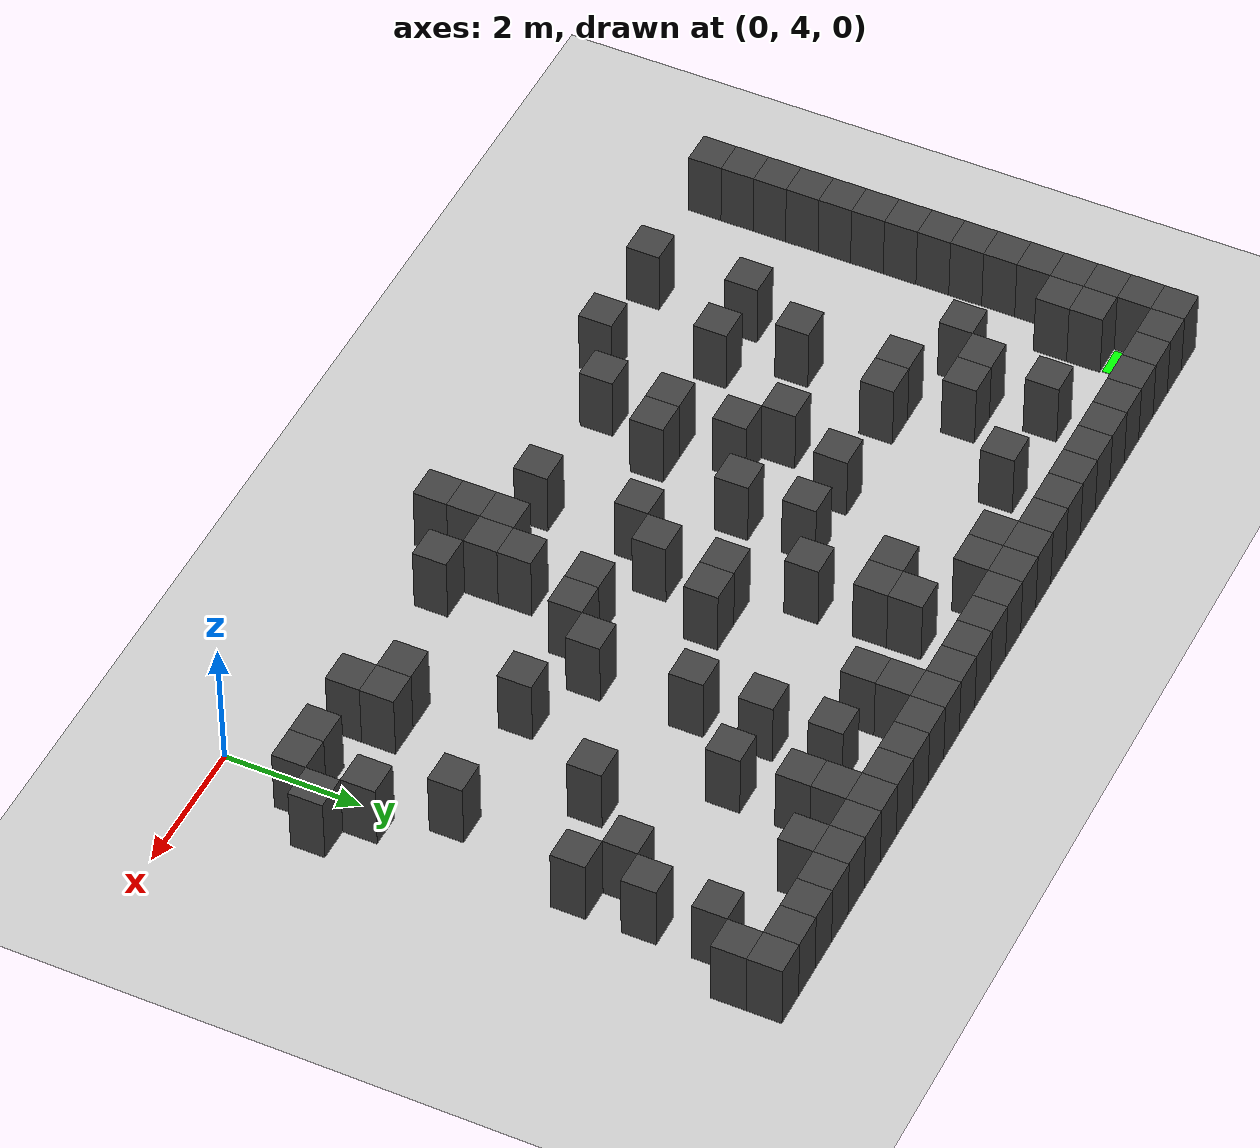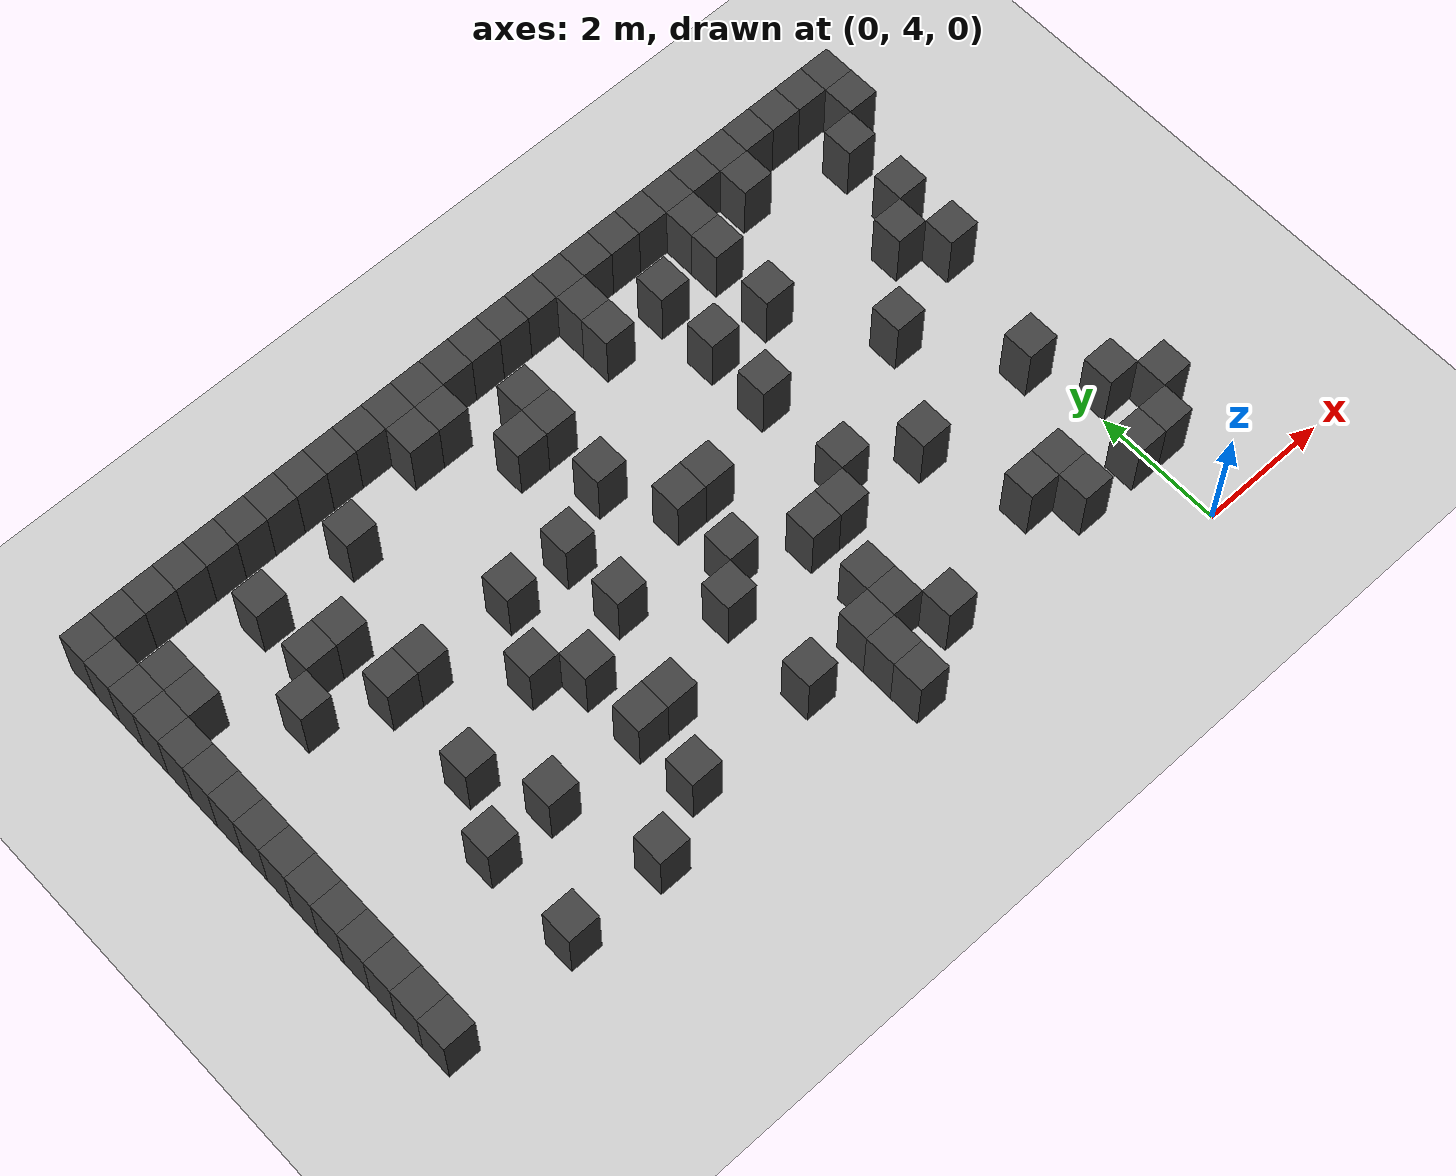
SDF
<sdf version="1.7">
 <world name="map_4009">
  <model name="ground_plane">
   <static>true</static>
   <link name="link">
    <collision name="collision">
     <geometry><plane><normal>0 0 1</normal><size>200 200</size></plane></geometry>
    </collision>
    <visual name="visual">
     <geometry><plane><normal>0 0 1</normal><size>200 200</size></plane></geometry>
     <material><ambient>0.8 0.8 0.8 1</ambient><diffuse>0.8 0.8 0.8 1</diffuse></material>
    </visual>
   </link>
  </model>
  <model name="maze_environment">
   <static>true</static>
   <link name="wall_0">
    <pose>-12.250 12.250 0.500 0 0 0</pose>
    <collision name="col"><geometry><box><size>0.5 0.5 1.0</size></box></geometry></collision>
    <visual name="vis">
     <geometry><box><size>0.5 0.5 1.0</size></box></geometry>
     <material><ambient>0.15 0.15 0.15 1</ambient><diffuse>0.25 0.25 0.25 1</diffuse></material>
    </visual>
   </link>
   <link name="wall_1">
    <pose>-11.750 12.250 0.500 0 0 0</pose>
    <collision name="col"><geometry><box><size>0.5 0.5 1.0</size></box></geometry></collision>
    <visual name="vis">
     <geometry><box><size>0.5 0.5 1.0</size></box></geometry>
     <material><ambient>0.15 0.15 0.15 1</ambient><diffuse>0.25 0.25 0.25 1</diffuse></material>
    </visual>
   </link>
   <link name="wall_2">
    <pose>-11.250 12.250 0.500 0 0 0</pose>
    <collision name="col"><geometry><box><size>0.5 0.5 1.0</size></box></geometry></collision>
    <visual name="vis">
     <geometry><box><size>0.5 0.5 1.0</size></box></geometry>
     <material><ambient>0.15 0.15 0.15 1</ambient><diffuse>0.25 0.25 0.25 1</diffuse></material>
    </visual>
   </link>
   <link name="wall_3">
    <pose>-10.750 12.250 0.500 0 0 0</pose>
    <collision name="col"><geometry><box><size>0.5 0.5 1.0</size></box></geometry></collision>
    <visual name="vis">
     <geometry><box><size>0.5 0.5 1.0</size></box></geometry>
     <material><ambient>0.15 0.15 0.15 1</ambient><diffuse>0.25 0.25 0.25 1</diffuse></material>
    </visual>
   </link>
   <link name="wall_4">
    <pose>-10.250 12.250 0.500 0 0 0</pose>
    <collision name="col"><geometry><box><size>0.5 0.5 1.0</size></box></geometry></collision>
    <visual name="vis">
     <geometry><box><size>0.5 0.5 1.0</size></box></geometry>
     <material><ambient>0.15 0.15 0.15 1</ambient><diffuse>0.25 0.25 0.25 1</diffuse></material>
    </visual>
   </link>
   <link name="wall_5">
    <pose>-9.750 12.250 0.500 0 0 0</pose>
    <collision name="col"><geometry><box><size>0.5 0.5 1.0</size></box></geometry></collision>
    <visual name="vis">
     <geometry><box><size>0.5 0.5 1.0</size></box></geometry>
     <material><ambient>0.15 0.15 0.15 1</ambient><diffuse>0.25 0.25 0.25 1</diffuse></material>
    </visual>
   </link>
   <link name="wall_6">
    <pose>-9.250 12.250 0.500 0 0 0</pose>
    <collision name="col"><geometry><box><size>0.5 0.5 1.0</size></box></geometry></collision>
    <visual name="vis">
     <geometry><box><size>0.5 0.5 1.0</size></box></geometry>
     <material><ambient>0.15 0.15 0.15 1</ambient><diffuse>0.25 0.25 0.25 1</diffuse></material>
    </visual>
   </link>
   <link name="wall_7">
    <pose>-8.750 12.250 0.500 0 0 0</pose>
    <collision name="col"><geometry><box><size>0.5 0.5 1.0</size></box></geometry></collision>
    <visual name="vis">
     <geometry><box><size>0.5 0.5 1.0</size></box></geometry>
     <material><ambient>0.15 0.15 0.15 1</ambient><diffuse>0.25 0.25 0.25 1</diffuse></material>
    </visual>
   </link>
   <link name="wall_8">
    <pose>-8.250 12.250 0.500 0 0 0</pose>
    <collision name="col"><geometry><box><size>0.5 0.5 1.0</size></box></geometry></collision>
    <visual name="vis">
     <geometry><box><size>0.5 0.5 1.0</size></box></geometry>
     <material><ambient>0.15 0.15 0.15 1</ambient><diffuse>0.25 0.25 0.25 1</diffuse></material>
    </visual>
   </link>
   <link name="wall_9">
    <pose>-7.750 12.250 0.500 0 0 0</pose>
    <collision name="col"><geometry><box><size>0.5 0.5 1.0</size></box></geometry></collision>
    <visual name="vis">
     <geometry><box><size>0.5 0.5 1.0</size></box></geometry>
     <material><ambient>0.15 0.15 0.15 1</ambient><diffuse>0.25 0.25 0.25 1</diffuse></material>
    </visual>
   </link>
   <link name="wall_10">
    <pose>-7.250 12.250 0.500 0 0 0</pose>
    <collision name="col"><geometry><box><size>0.5 0.5 1.0</size></box></geometry></collision>
    <visual name="vis">
     <geometry><box><size>0.5 0.5 1.0</size></box></geometry>
     <material><ambient>0.15 0.15 0.15 1</ambient><diffuse>0.25 0.25 0.25 1</diffuse></material>
    </visual>
   </link>
   <link name="wall_11">
    <pose>-6.750 12.250 0.500 0 0 0</pose>
    <collision name="col"><geometry><box><size>0.5 0.5 1.0</size></box></geometry></collision>
    <visual name="vis">
     <geometry><box><size>0.5 0.5 1.0</size></box></geometry>
     <material><ambient>0.15 0.15 0.15 1</ambient><diffuse>0.25 0.25 0.25 1</diffuse></material>
    </visual>
   </link>
   <link name="wall_12">
    <pose>-6.250 12.250 0.500 0 0 0</pose>
    <collision name="col"><geometry><box><size>0.5 0.5 1.0</size></box></geometry></collision>
    <visual name="vis">
     <geometry><box><size>0.5 0.5 1.0</size></box></geometry>
     <material><ambient>0.15 0.15 0.15 1</ambient><diffuse>0.25 0.25 0.25 1</diffuse></material>
    </visual>
   </link>
   <link name="wall_13">
    <pose>-5.750 12.250 0.500 0 0 0</pose>
    <collision name="col"><geometry><box><size>0.5 0.5 1.0</size></box></geometry></collision>
    <visual name="vis">
     <geometry><box><size>0.5 0.5 1.0</size></box></geometry>
     <material><ambient>0.15 0.15 0.15 1</ambient><diffuse>0.25 0.25 0.25 1</diffuse></material>
    </visual>
   </link>
   <link name="wall_14">
    <pose>-5.250 12.250 0.500 0 0 0</pose>
    <collision name="col"><geometry><box><size>0.5 0.5 1.0</size></box></geometry></collision>
    <visual name="vis">
     <geometry><box><size>0.5 0.5 1.0</size></box></geometry>
     <material><ambient>0.15 0.15 0.15 1</ambient><diffuse>0.25 0.25 0.25 1</diffuse></material>
    </visual>
   </link>
   <link name="wall_15">
    <pose>-4.750 12.250 0.500 0 0 0</pose>
    <collision name="col"><geometry><box><size>0.5 0.5 1.0</size></box></geometry></collision>
    <visual name="vis">
     <geometry><box><size>0.5 0.5 1.0</size></box></geometry>
     <material><ambient>0.15 0.15 0.15 1</ambient><diffuse>0.25 0.25 0.25 1</diffuse></material>
    </visual>
   </link>
   <link name="wall_16">
    <pose>-4.250 12.250 0.500 0 0 0</pose>
    <collision name="col"><geometry><box><size>0.5 0.5 1.0</size></box></geometry></collision>
    <visual name="vis">
     <geometry><box><size>0.5 0.5 1.0</size></box></geometry>
     <material><ambient>0.15 0.15 0.15 1</ambient><diffuse>0.25 0.25 0.25 1</diffuse></material>
    </visual>
   </link>
   <link name="wall_17">
    <pose>-3.750 12.250 0.500 0 0 0</pose>
    <collision name="col"><geometry><box><size>0.5 0.5 1.0</size></box></geometry></collision>
    <visual name="vis">
     <geometry><box><size>0.5 0.5 1.0</size></box></geometry>
     <material><ambient>0.15 0.15 0.15 1</ambient><diffuse>0.25 0.25 0.25 1</diffuse></material>
    </visual>
   </link>
   <link name="wall_18">
    <pose>-3.250 12.250 0.500 0 0 0</pose>
    <collision name="col"><geometry><box><size>0.5 0.5 1.0</size></box></geometry></collision>
    <visual name="vis">
     <geometry><box><size>0.5 0.5 1.0</size></box></geometry>
     <material><ambient>0.15 0.15 0.15 1</ambient><diffuse>0.25 0.25 0.25 1</diffuse></material>
    </visual>
   </link>
   <link name="wall_19">
    <pose>-2.750 12.250 0.500 0 0 0</pose>
    <collision name="col"><geometry><box><size>0.5 0.5 1.0</size></box></geometry></collision>
    <visual name="vis">
     <geometry><box><size>0.5 0.5 1.0</size></box></geometry>
     <material><ambient>0.15 0.15 0.15 1</ambient><diffuse>0.25 0.25 0.25 1</diffuse></material>
    </visual>
   </link>
   <link name="wall_20">
    <pose>-2.250 12.250 0.500 0 0 0</pose>
    <collision name="col"><geometry><box><size>0.5 0.5 1.0</size></box></geometry></collision>
    <visual name="vis">
     <geometry><box><size>0.5 0.5 1.0</size></box></geometry>
     <material><ambient>0.15 0.15 0.15 1</ambient><diffuse>0.25 0.25 0.25 1</diffuse></material>
    </visual>
   </link>
   <link name="wall_21">
    <pose>-1.750 12.250 0.500 0 0 0</pose>
    <collision name="col"><geometry><box><size>0.5 0.5 1.0</size></box></geometry></collision>
    <visual name="vis">
     <geometry><box><size>0.5 0.5 1.0</size></box></geometry>
     <material><ambient>0.15 0.15 0.15 1</ambient><diffuse>0.25 0.25 0.25 1</diffuse></material>
    </visual>
   </link>
   <link name="wall_22">
    <pose>-1.250 12.250 0.500 0 0 0</pose>
    <collision name="col"><geometry><box><size>0.5 0.5 1.0</size></box></geometry></collision>
    <visual name="vis">
     <geometry><box><size>0.5 0.5 1.0</size></box></geometry>
     <material><ambient>0.15 0.15 0.15 1</ambient><diffuse>0.25 0.25 0.25 1</diffuse></material>
    </visual>
   </link>
   <link name="wall_23">
    <pose>-0.750 12.250 0.500 0 0 0</pose>
    <collision name="col"><geometry><box><size>0.5 0.5 1.0</size></box></geometry></collision>
    <visual name="vis">
     <geometry><box><size>0.5 0.5 1.0</size></box></geometry>
     <material><ambient>0.15 0.15 0.15 1</ambient><diffuse>0.25 0.25 0.25 1</diffuse></material>
    </visual>
   </link>
   <link name="wall_24">
    <pose>-0.250 12.250 0.500 0 0 0</pose>
    <collision name="col"><geometry><box><size>0.5 0.5 1.0</size></box></geometry></collision>
    <visual name="vis">
     <geometry><box><size>0.5 0.5 1.0</size></box></geometry>
     <material><ambient>0.15 0.15 0.15 1</ambient><diffuse>0.25 0.25 0.25 1</diffuse></material>
    </visual>
   </link>
   <link name="wall_25">
    <pose>0.250 12.250 0.500 0 0 0</pose>
    <collision name="col"><geometry><box><size>0.5 0.5 1.0</size></box></geometry></collision>
    <visual name="vis">
     <geometry><box><size>0.5 0.5 1.0</size></box></geometry>
     <material><ambient>0.15 0.15 0.15 1</ambient><diffuse>0.25 0.25 0.25 1</diffuse></material>
    </visual>
   </link>
   <link name="wall_26">
    <pose>0.750 12.250 0.500 0 0 0</pose>
    <collision name="col"><geometry><box><size>0.5 0.5 1.0</size></box></geometry></collision>
    <visual name="vis">
     <geometry><box><size>0.5 0.5 1.0</size></box></geometry>
     <material><ambient>0.15 0.15 0.15 1</ambient><diffuse>0.25 0.25 0.25 1</diffuse></material>
    </visual>
   </link>
   <link name="wall_50">
    <pose>-12.250 11.750 0.500 0 0 0</pose>
    <collision name="col"><geometry><box><size>0.5 0.5 1.0</size></box></geometry></collision>
    <visual name="vis">
     <geometry><box><size>0.5 0.5 1.0</size></box></geometry>
     <material><ambient>0.15 0.15 0.15 1</ambient><diffuse>0.25 0.25 0.25 1</diffuse></material>
    </visual>
   </link>
   <link name="wall_51">
    <pose>-7.250 11.750 0.500 0 0 0</pose>
    <collision name="col"><geometry><box><size>0.5 0.5 1.0</size></box></geometry></collision>
    <visual name="vis">
     <geometry><box><size>0.5 0.5 1.0</size></box></geometry>
     <material><ambient>0.15 0.15 0.15 1</ambient><diffuse>0.25 0.25 0.25 1</diffuse></material>
    </visual>
   </link>
   <link name="wall_52">
    <pose>-6.750 11.750 0.500 0 0 0</pose>
    <collision name="col"><geometry><box><size>0.5 0.5 1.0</size></box></geometry></collision>
    <visual name="vis">
     <geometry><box><size>0.5 0.5 1.0</size></box></geometry>
     <material><ambient>0.15 0.15 0.15 1</ambient><diffuse>0.25 0.25 0.25 1</diffuse></material>
    </visual>
   </link>
   <link name="wall_53">
    <pose>-4.250 11.750 0.500 0 0 0</pose>
    <collision name="col"><geometry><box><size>0.5 0.5 1.0</size></box></geometry></collision>
    <visual name="vis">
     <geometry><box><size>0.5 0.5 1.0</size></box></geometry>
     <material><ambient>0.15 0.15 0.15 1</ambient><diffuse>0.25 0.25 0.25 1</diffuse></material>
    </visual>
   </link>
   <link name="wall_54">
    <pose>-2.250 11.750 0.500 0 0 0</pose>
    <collision name="col"><geometry><box><size>0.5 0.5 1.0</size></box></geometry></collision>
    <visual name="vis">
     <geometry><box><size>0.5 0.5 1.0</size></box></geometry>
     <material><ambient>0.15 0.15 0.15 1</ambient><diffuse>0.25 0.25 0.25 1</diffuse></material>
    </visual>
   </link>
   <link name="wall_55">
    <pose>-1.250 11.750 0.500 0 0 0</pose>
    <collision name="col"><geometry><box><size>0.5 0.5 1.0</size></box></geometry></collision>
    <visual name="vis">
     <geometry><box><size>0.5 0.5 1.0</size></box></geometry>
     <material><ambient>0.15 0.15 0.15 1</ambient><diffuse>0.25 0.25 0.25 1</diffuse></material>
    </visual>
   </link>
   <link name="wall_56">
    <pose>0.750 11.750 0.500 0 0 0</pose>
    <collision name="col"><geometry><box><size>0.5 0.5 1.0</size></box></geometry></collision>
    <visual name="vis">
     <geometry><box><size>0.5 0.5 1.0</size></box></geometry>
     <material><ambient>0.15 0.15 0.15 1</ambient><diffuse>0.25 0.25 0.25 1</diffuse></material>
    </visual>
   </link>
   <link name="wall_64">
    <pose>-12.250 11.250 0.500 0 0 0</pose>
    <collision name="col"><geometry><box><size>0.5 0.5 1.0</size></box></geometry></collision>
    <visual name="vis">
     <geometry><box><size>0.5 0.5 1.0</size></box></geometry>
     <material><ambient>0.15 0.15 0.15 1</ambient><diffuse>0.25 0.25 0.25 1</diffuse></material>
    </visual>
   </link>
   <link name="wall_65">
    <pose>-11.750 11.250 0.500 0 0 0</pose>
    <collision name="col"><geometry><box><size>0.5 0.5 1.0</size></box></geometry></collision>
    <visual name="vis">
     <geometry><box><size>0.5 0.5 1.0</size></box></geometry>
     <material><ambient>0.15 0.15 0.15 1</ambient><diffuse>0.25 0.25 0.25 1</diffuse></material>
    </visual>
   </link>
   <link name="wall_66">
    <pose>-10.250 11.250 0.500 0 0 0</pose>
    <collision name="col"><geometry><box><size>0.5 0.5 1.0</size></box></geometry></collision>
    <visual name="vis">
     <geometry><box><size>0.5 0.5 1.0</size></box></geometry>
     <material><ambient>0.15 0.15 0.15 1</ambient><diffuse>0.25 0.25 0.25 1</diffuse></material>
    </visual>
   </link>
   <link name="wall_67">
    <pose>-8.750 11.250 0.500 0 0 0</pose>
    <collision name="col"><geometry><box><size>0.5 0.5 1.0</size></box></geometry></collision>
    <visual name="vis">
     <geometry><box><size>0.5 0.5 1.0</size></box></geometry>
     <material><ambient>0.15 0.15 0.15 1</ambient><diffuse>0.25 0.25 0.25 1</diffuse></material>
    </visual>
   </link>
   <link name="wall_68">
    <pose>-5.750 11.250 0.500 0 0 0</pose>
    <collision name="col"><geometry><box><size>0.5 0.5 1.0</size></box></geometry></collision>
    <visual name="vis">
     <geometry><box><size>0.5 0.5 1.0</size></box></geometry>
     <material><ambient>0.15 0.15 0.15 1</ambient><diffuse>0.25 0.25 0.25 1</diffuse></material>
    </visual>
   </link>
   <link name="wall_69">
    <pose>-4.250 11.250 0.500 0 0 0</pose>
    <collision name="col"><geometry><box><size>0.5 0.5 1.0</size></box></geometry></collision>
    <visual name="vis">
     <geometry><box><size>0.5 0.5 1.0</size></box></geometry>
     <material><ambient>0.15 0.15 0.15 1</ambient><diffuse>0.25 0.25 0.25 1</diffuse></material>
    </visual>
   </link>
   <link name="wall_70">
    <pose>-3.250 11.250 0.500 0 0 0</pose>
    <collision name="col"><geometry><box><size>0.5 0.5 1.0</size></box></geometry></collision>
    <visual name="vis">
     <geometry><box><size>0.5 0.5 1.0</size></box></geometry>
     <material><ambient>0.15 0.15 0.15 1</ambient><diffuse>0.25 0.25 0.25 1</diffuse></material>
    </visual>
   </link>
   <link name="wall_71">
    <pose>-2.250 11.250 0.500 0 0 0</pose>
    <collision name="col"><geometry><box><size>0.5 0.5 1.0</size></box></geometry></collision>
    <visual name="vis">
     <geometry><box><size>0.5 0.5 1.0</size></box></geometry>
     <material><ambient>0.15 0.15 0.15 1</ambient><diffuse>0.25 0.25 0.25 1</diffuse></material>
    </visual>
   </link>
   <link name="wall_72">
    <pose>0.250 11.250 0.500 0 0 0</pose>
    <collision name="col"><geometry><box><size>0.5 0.5 1.0</size></box></geometry></collision>
    <visual name="vis">
     <geometry><box><size>0.5 0.5 1.0</size></box></geometry>
     <material><ambient>0.15 0.15 0.15 1</ambient><diffuse>0.25 0.25 0.25 1</diffuse></material>
    </visual>
   </link>
   <link name="wall_79">
    <pose>-12.250 10.750 0.500 0 0 0</pose>
    <collision name="col"><geometry><box><size>0.5 0.5 1.0</size></box></geometry></collision>
    <visual name="vis">
     <geometry><box><size>0.5 0.5 1.0</size></box></geometry>
     <material><ambient>0.15 0.15 0.15 1</ambient><diffuse>0.25 0.25 0.25 1</diffuse></material>
    </visual>
   </link>
   <link name="wall_80">
    <pose>-11.750 10.750 0.500 0 0 0</pose>
    <collision name="col"><geometry><box><size>0.5 0.5 1.0</size></box></geometry></collision>
    <visual name="vis">
     <geometry><box><size>0.5 0.5 1.0</size></box></geometry>
     <material><ambient>0.15 0.15 0.15 1</ambient><diffuse>0.25 0.25 0.25 1</diffuse></material>
    </visual>
   </link>
   <link name="wall_81">
    <pose>-6.250 10.750 0.500 0 0 0</pose>
    <collision name="col"><geometry><box><size>0.5 0.5 1.0</size></box></geometry></collision>
    <visual name="vis">
     <geometry><box><size>0.5 0.5 1.0</size></box></geometry>
     <material><ambient>0.15 0.15 0.15 1</ambient><diffuse>0.25 0.25 0.25 1</diffuse></material>
    </visual>
   </link>
   <link name="wall_82">
    <pose>-5.750 10.750 0.500 0 0 0</pose>
    <collision name="col"><geometry><box><size>0.5 0.5 1.0</size></box></geometry></collision>
    <visual name="vis">
     <geometry><box><size>0.5 0.5 1.0</size></box></geometry>
     <material><ambient>0.15 0.15 0.15 1</ambient><diffuse>0.25 0.25 0.25 1</diffuse></material>
    </visual>
   </link>
   <link name="wall_87">
    <pose>-12.250 10.250 0.500 0 0 0</pose>
    <collision name="col"><geometry><box><size>0.5 0.5 1.0</size></box></geometry></collision>
    <visual name="vis">
     <geometry><box><size>0.5 0.5 1.0</size></box></geometry>
     <material><ambient>0.15 0.15 0.15 1</ambient><diffuse>0.25 0.25 0.25 1</diffuse></material>
    </visual>
   </link>
   <link name="wall_88">
    <pose>-10.250 10.250 0.500 0 0 0</pose>
    <collision name="col"><geometry><box><size>0.5 0.5 1.0</size></box></geometry></collision>
    <visual name="vis">
     <geometry><box><size>0.5 0.5 1.0</size></box></geometry>
     <material><ambient>0.15 0.15 0.15 1</ambient><diffuse>0.25 0.25 0.25 1</diffuse></material>
    </visual>
   </link>
   <link name="wall_89">
    <pose>-9.750 10.250 0.500 0 0 0</pose>
    <collision name="col"><geometry><box><size>0.5 0.5 1.0</size></box></geometry></collision>
    <visual name="vis">
     <geometry><box><size>0.5 0.5 1.0</size></box></geometry>
     <material><ambient>0.15 0.15 0.15 1</ambient><diffuse>0.25 0.25 0.25 1</diffuse></material>
    </visual>
   </link>
   <link name="wall_90">
    <pose>-3.250 10.250 0.500 0 0 0</pose>
    <collision name="col"><geometry><box><size>0.5 0.5 1.0</size></box></geometry></collision>
    <visual name="vis">
     <geometry><box><size>0.5 0.5 1.0</size></box></geometry>
     <material><ambient>0.15 0.15 0.15 1</ambient><diffuse>0.25 0.25 0.25 1</diffuse></material>
    </visual>
   </link>
   <link name="wall_91">
    <pose>-2.250 10.250 0.500 0 0 0</pose>
    <collision name="col"><geometry><box><size>0.5 0.5 1.0</size></box></geometry></collision>
    <visual name="vis">
     <geometry><box><size>0.5 0.5 1.0</size></box></geometry>
     <material><ambient>0.15 0.15 0.15 1</ambient><diffuse>0.25 0.25 0.25 1</diffuse></material>
    </visual>
   </link>
   <link name="wall_92">
    <pose>0.250 10.250 0.500 0 0 0</pose>
    <collision name="col"><geometry><box><size>0.5 0.5 1.0</size></box></geometry></collision>
    <visual name="vis">
     <geometry><box><size>0.5 0.5 1.0</size></box></geometry>
     <material><ambient>0.15 0.15 0.15 1</ambient><diffuse>0.25 0.25 0.25 1</diffuse></material>
    </visual>
   </link>
   <link name="wall_98">
    <pose>-12.250 9.750 0.500 0 0 0</pose>
    <collision name="col"><geometry><box><size>0.5 0.5 1.0</size></box></geometry></collision>
    <visual name="vis">
     <geometry><box><size>0.5 0.5 1.0</size></box></geometry>
     <material><ambient>0.15 0.15 0.15 1</ambient><diffuse>0.25 0.25 0.25 1</diffuse></material>
    </visual>
   </link>
   <link name="wall_99">
    <pose>-10.750 9.750 0.500 0 0 0</pose>
    <collision name="col"><geometry><box><size>0.5 0.5 1.0</size></box></geometry></collision>
    <visual name="vis">
     <geometry><box><size>0.5 0.5 1.0</size></box></geometry>
     <material><ambient>0.15 0.15 0.15 1</ambient><diffuse>0.25 0.25 0.25 1</diffuse></material>
    </visual>
   </link>
   <link name="wall_100">
    <pose>-5.750 9.750 0.500 0 0 0</pose>
    <collision name="col"><geometry><box><size>0.5 0.5 1.0</size></box></geometry></collision>
    <visual name="vis">
     <geometry><box><size>0.5 0.5 1.0</size></box></geometry>
     <material><ambient>0.15 0.15 0.15 1</ambient><diffuse>0.25 0.25 0.25 1</diffuse></material>
    </visual>
   </link>
   <link name="wall_101">
    <pose>-0.250 9.750 0.500 0 0 0</pose>
    <collision name="col"><geometry><box><size>0.5 0.5 1.0</size></box></geometry></collision>
    <visual name="vis">
     <geometry><box><size>0.5 0.5 1.0</size></box></geometry>
     <material><ambient>0.15 0.15 0.15 1</ambient><diffuse>0.25 0.25 0.25 1</diffuse></material>
    </visual>
   </link>
   <link name="wall_107">
    <pose>-12.250 9.250 0.500 0 0 0</pose>
    <collision name="col"><geometry><box><size>0.5 0.5 1.0</size></box></geometry></collision>
    <visual name="vis">
     <geometry><box><size>0.5 0.5 1.0</size></box></geometry>
     <material><ambient>0.15 0.15 0.15 1</ambient><diffuse>0.25 0.25 0.25 1</diffuse></material>
    </visual>
   </link>
   <link name="wall_108">
    <pose>-9.750 9.250 0.500 0 0 0</pose>
    <collision name="col"><geometry><box><size>0.5 0.5 1.0</size></box></geometry></collision>
    <visual name="vis">
     <geometry><box><size>0.5 0.5 1.0</size></box></geometry>
     <material><ambient>0.15 0.15 0.15 1</ambient><diffuse>0.25 0.25 0.25 1</diffuse></material>
    </visual>
   </link>
   <link name="wall_109">
    <pose>-9.250 9.250 0.500 0 0 0</pose>
    <collision name="col"><geometry><box><size>0.5 0.5 1.0</size></box></geometry></collision>
    <visual name="vis">
     <geometry><box><size>0.5 0.5 1.0</size></box></geometry>
     <material><ambient>0.15 0.15 0.15 1</ambient><diffuse>0.25 0.25 0.25 1</diffuse></material>
    </visual>
   </link>
   <link name="wall_110">
    <pose>-7.750 9.250 0.500 0 0 0</pose>
    <collision name="col"><geometry><box><size>0.5 0.5 1.0</size></box></geometry></collision>
    <visual name="vis">
     <geometry><box><size>0.5 0.5 1.0</size></box></geometry>
     <material><ambient>0.15 0.15 0.15 1</ambient><diffuse>0.25 0.25 0.25 1</diffuse></material>
    </visual>
   </link>
   <link name="wall_111">
    <pose>-6.750 9.250 0.500 0 0 0</pose>
    <collision name="col"><geometry><box><size>0.5 0.5 1.0</size></box></geometry></collision>
    <visual name="vis">
     <geometry><box><size>0.5 0.5 1.0</size></box></geometry>
     <material><ambient>0.15 0.15 0.15 1</ambient><diffuse>0.25 0.25 0.25 1</diffuse></material>
    </visual>
   </link>
   <link name="wall_112">
    <pose>-3.250 9.250 0.500 0 0 0</pose>
    <collision name="col"><geometry><box><size>0.5 0.5 1.0</size></box></geometry></collision>
    <visual name="vis">
     <geometry><box><size>0.5 0.5 1.0</size></box></geometry>
     <material><ambient>0.15 0.15 0.15 1</ambient><diffuse>0.25 0.25 0.25 1</diffuse></material>
    </visual>
   </link>
   <link name="wall_113">
    <pose>0.250 9.250 0.500 0 0 0</pose>
    <collision name="col"><geometry><box><size>0.5 0.5 1.0</size></box></geometry></collision>
    <visual name="vis">
     <geometry><box><size>0.5 0.5 1.0</size></box></geometry>
     <material><ambient>0.15 0.15 0.15 1</ambient><diffuse>0.25 0.25 0.25 1</diffuse></material>
    </visual>
   </link>
   <link name="wall_117">
    <pose>-12.250 8.750 0.500 0 0 0</pose>
    <collision name="col"><geometry><box><size>0.5 0.5 1.0</size></box></geometry></collision>
    <visual name="vis">
     <geometry><box><size>0.5 0.5 1.0</size></box></geometry>
     <material><ambient>0.15 0.15 0.15 1</ambient><diffuse>0.25 0.25 0.25 1</diffuse></material>
    </visual>
   </link>
   <link name="wall_118">
    <pose>-5.250 8.750 0.500 0 0 0</pose>
    <collision name="col"><geometry><box><size>0.5 0.5 1.0</size></box></geometry></collision>
    <visual name="vis">
     <geometry><box><size>0.5 0.5 1.0</size></box></geometry>
     <material><ambient>0.15 0.15 0.15 1</ambient><diffuse>0.25 0.25 0.25 1</diffuse></material>
    </visual>
   </link>
   <link name="wall_119">
    <pose>-4.750 8.750 0.500 0 0 0</pose>
    <collision name="col"><geometry><box><size>0.5 0.5 1.0</size></box></geometry></collision>
    <visual name="vis">
     <geometry><box><size>0.5 0.5 1.0</size></box></geometry>
     <material><ambient>0.15 0.15 0.15 1</ambient><diffuse>0.25 0.25 0.25 1</diffuse></material>
    </visual>
   </link>
   <link name="wall_120">
    <pose>-1.250 8.750 0.500 0 0 0</pose>
    <collision name="col"><geometry><box><size>0.5 0.5 1.0</size></box></geometry></collision>
    <visual name="vis">
     <geometry><box><size>0.5 0.5 1.0</size></box></geometry>
     <material><ambient>0.15 0.15 0.15 1</ambient><diffuse>0.25 0.25 0.25 1</diffuse></material>
    </visual>
   </link>
   <link name="wall_126">
    <pose>-12.250 8.250 0.500 0 0 0</pose>
    <collision name="col"><geometry><box><size>0.5 0.5 1.0</size></box></geometry></collision>
    <visual name="vis">
     <geometry><box><size>0.5 0.5 1.0</size></box></geometry>
     <material><ambient>0.15 0.15 0.15 1</ambient><diffuse>0.25 0.25 0.25 1</diffuse></material>
    </visual>
   </link>
   <link name="wall_127">
    <pose>-8.250 8.250 0.500 0 0 0</pose>
    <collision name="col"><geometry><box><size>0.5 0.5 1.0</size></box></geometry></collision>
    <visual name="vis">
     <geometry><box><size>0.5 0.5 1.0</size></box></geometry>
     <material><ambient>0.15 0.15 0.15 1</ambient><diffuse>0.25 0.25 0.25 1</diffuse></material>
    </visual>
   </link>
   <link name="wall_128">
    <pose>-6.750 8.250 0.500 0 0 0</pose>
    <collision name="col"><geometry><box><size>0.5 0.5 1.0</size></box></geometry></collision>
    <visual name="vis">
     <geometry><box><size>0.5 0.5 1.0</size></box></geometry>
     <material><ambient>0.15 0.15 0.15 1</ambient><diffuse>0.25 0.25 0.25 1</diffuse></material>
    </visual>
   </link>
   <link name="wall_133">
    <pose>-12.250 7.750 0.500 0 0 0</pose>
    <collision name="col"><geometry><box><size>0.5 0.5 1.0</size></box></geometry></collision>
    <visual name="vis">
     <geometry><box><size>0.5 0.5 1.0</size></box></geometry>
     <material><ambient>0.15 0.15 0.15 1</ambient><diffuse>0.25 0.25 0.25 1</diffuse></material>
    </visual>
   </link>
   <link name="wall_134">
    <pose>-9.750 7.750 0.500 0 0 0</pose>
    <collision name="col"><geometry><box><size>0.5 0.5 1.0</size></box></geometry></collision>
    <visual name="vis">
     <geometry><box><size>0.5 0.5 1.0</size></box></geometry>
     <material><ambient>0.15 0.15 0.15 1</ambient><diffuse>0.25 0.25 0.25 1</diffuse></material>
    </visual>
   </link>
   <link name="wall_135">
    <pose>-7.750 7.750 0.500 0 0 0</pose>
    <collision name="col"><geometry><box><size>0.5 0.5 1.0</size></box></geometry></collision>
    <visual name="vis">
     <geometry><box><size>0.5 0.5 1.0</size></box></geometry>
     <material><ambient>0.15 0.15 0.15 1</ambient><diffuse>0.25 0.25 0.25 1</diffuse></material>
    </visual>
   </link>
   <link name="wall_136">
    <pose>-5.250 7.750 0.500 0 0 0</pose>
    <collision name="col"><geometry><box><size>0.5 0.5 1.0</size></box></geometry></collision>
    <visual name="vis">
     <geometry><box><size>0.5 0.5 1.0</size></box></geometry>
     <material><ambient>0.15 0.15 0.15 1</ambient><diffuse>0.25 0.25 0.25 1</diffuse></material>
    </visual>
   </link>
   <link name="wall_137">
    <pose>-3.250 7.750 0.500 0 0 0</pose>
    <collision name="col"><geometry><box><size>0.5 0.5 1.0</size></box></geometry></collision>
    <visual name="vis">
     <geometry><box><size>0.5 0.5 1.0</size></box></geometry>
     <material><ambient>0.15 0.15 0.15 1</ambient><diffuse>0.25 0.25 0.25 1</diffuse></material>
    </visual>
   </link>
   <link name="wall_144">
    <pose>-12.250 7.250 0.500 0 0 0</pose>
    <collision name="col"><geometry><box><size>0.5 0.5 1.0</size></box></geometry></collision>
    <visual name="vis">
     <geometry><box><size>0.5 0.5 1.0</size></box></geometry>
     <material><ambient>0.15 0.15 0.15 1</ambient><diffuse>0.25 0.25 0.25 1</diffuse></material>
    </visual>
   </link>
   <link name="wall_145">
    <pose>-5.750 7.250 0.500 0 0 0</pose>
    <collision name="col"><geometry><box><size>0.5 0.5 1.0</size></box></geometry></collision>
    <visual name="vis">
     <geometry><box><size>0.5 0.5 1.0</size></box></geometry>
     <material><ambient>0.15 0.15 0.15 1</ambient><diffuse>0.25 0.25 0.25 1</diffuse></material>
    </visual>
   </link>
   <link name="wall_146">
    <pose>-4.250 7.250 0.500 0 0 0</pose>
    <collision name="col"><geometry><box><size>0.5 0.5 1.0</size></box></geometry></collision>
    <visual name="vis">
     <geometry><box><size>0.5 0.5 1.0</size></box></geometry>
     <material><ambient>0.15 0.15 0.15 1</ambient><diffuse>0.25 0.25 0.25 1</diffuse></material>
    </visual>
   </link>
   <link name="wall_147">
    <pose>-3.750 7.250 0.500 0 0 0</pose>
    <collision name="col"><geometry><box><size>0.5 0.5 1.0</size></box></geometry></collision>
    <visual name="vis">
     <geometry><box><size>0.5 0.5 1.0</size></box></geometry>
     <material><ambient>0.15 0.15 0.15 1</ambient><diffuse>0.25 0.25 0.25 1</diffuse></material>
    </visual>
   </link>
   <link name="wall_148">
    <pose>-2.250 7.250 0.500 0 0 0</pose>
    <collision name="col"><geometry><box><size>0.5 0.5 1.0</size></box></geometry></collision>
    <visual name="vis">
     <geometry><box><size>0.5 0.5 1.0</size></box></geometry>
     <material><ambient>0.15 0.15 0.15 1</ambient><diffuse>0.25 0.25 0.25 1</diffuse></material>
    </visual>
   </link>
   <link name="wall_149">
    <pose>-0.250 7.250 0.500 0 0 0</pose>
    <collision name="col"><geometry><box><size>0.5 0.5 1.0</size></box></geometry></collision>
    <visual name="vis">
     <geometry><box><size>0.5 0.5 1.0</size></box></geometry>
     <material><ambient>0.15 0.15 0.15 1</ambient><diffuse>0.25 0.25 0.25 1</diffuse></material>
    </visual>
   </link>
   <link name="wall_155">
    <pose>-12.250 6.750 0.500 0 0 0</pose>
    <collision name="col"><geometry><box><size>0.5 0.5 1.0</size></box></geometry></collision>
    <visual name="vis">
     <geometry><box><size>0.5 0.5 1.0</size></box></geometry>
     <material><ambient>0.15 0.15 0.15 1</ambient><diffuse>0.25 0.25 0.25 1</diffuse></material>
    </visual>
   </link>
   <link name="wall_156">
    <pose>-10.250 6.750 0.500 0 0 0</pose>
    <collision name="col"><geometry><box><size>0.5 0.5 1.0</size></box></geometry></collision>
    <visual name="vis">
     <geometry><box><size>0.5 0.5 1.0</size></box></geometry>
     <material><ambient>0.15 0.15 0.15 1</ambient><diffuse>0.25 0.25 0.25 1</diffuse></material>
    </visual>
   </link>
   <link name="wall_157">
    <pose>-9.250 6.750 0.500 0 0 0</pose>
    <collision name="col"><geometry><box><size>0.5 0.5 1.0</size></box></geometry></collision>
    <visual name="vis">
     <geometry><box><size>0.5 0.5 1.0</size></box></geometry>
     <material><ambient>0.15 0.15 0.15 1</ambient><diffuse>0.25 0.25 0.25 1</diffuse></material>
    </visual>
   </link>
   <link name="wall_158">
    <pose>-7.750 6.750 0.500 0 0 0</pose>
    <collision name="col"><geometry><box><size>0.5 0.5 1.0</size></box></geometry></collision>
    <visual name="vis">
     <geometry><box><size>0.5 0.5 1.0</size></box></geometry>
     <material><ambient>0.15 0.15 0.15 1</ambient><diffuse>0.25 0.25 0.25 1</diffuse></material>
    </visual>
   </link>
   <link name="wall_159">
    <pose>-7.250 6.750 0.500 0 0 0</pose>
    <collision name="col"><geometry><box><size>0.5 0.5 1.0</size></box></geometry></collision>
    <visual name="vis">
     <geometry><box><size>0.5 0.5 1.0</size></box></geometry>
     <material><ambient>0.15 0.15 0.15 1</ambient><diffuse>0.25 0.25 0.25 1</diffuse></material>
    </visual>
   </link>
   <link name="wall_166">
    <pose>-12.250 6.250 0.500 0 0 0</pose>
    <collision name="col"><geometry><box><size>0.5 0.5 1.0</size></box></geometry></collision>
    <visual name="vis">
     <geometry><box><size>0.5 0.5 1.0</size></box></geometry>
     <material><ambient>0.15 0.15 0.15 1</ambient><diffuse>0.25 0.25 0.25 1</diffuse></material>
    </visual>
   </link>
   <link name="wall_167">
    <pose>-4.250 6.250 0.500 0 0 0</pose>
    <collision name="col"><geometry><box><size>0.5 0.5 1.0</size></box></geometry></collision>
    <visual name="vis">
     <geometry><box><size>0.5 0.5 1.0</size></box></geometry>
     <material><ambient>0.15 0.15 0.15 1</ambient><diffuse>0.25 0.25 0.25 1</diffuse></material>
    </visual>
   </link>
   <link name="wall_168">
    <pose>0.250 6.250 0.500 0 0 0</pose>
    <collision name="col"><geometry><box><size>0.5 0.5 1.0</size></box></geometry></collision>
    <visual name="vis">
     <geometry><box><size>0.5 0.5 1.0</size></box></geometry>
     <material><ambient>0.15 0.15 0.15 1</ambient><diffuse>0.25 0.25 0.25 1</diffuse></material>
    </visual>
   </link>
   <link name="wall_175">
    <pose>-12.250 5.750 0.500 0 0 0</pose>
    <collision name="col"><geometry><box><size>0.5 0.5 1.0</size></box></geometry></collision>
    <visual name="vis">
     <geometry><box><size>0.5 0.5 1.0</size></box></geometry>
     <material><ambient>0.15 0.15 0.15 1</ambient><diffuse>0.25 0.25 0.25 1</diffuse></material>
    </visual>
   </link>
   <link name="wall_176">
    <pose>-7.750 5.750 0.500 0 0 0</pose>
    <collision name="col"><geometry><box><size>0.5 0.5 1.0</size></box></geometry></collision>
    <visual name="vis">
     <geometry><box><size>0.5 0.5 1.0</size></box></geometry>
     <material><ambient>0.15 0.15 0.15 1</ambient><diffuse>0.25 0.25 0.25 1</diffuse></material>
    </visual>
   </link>
   <link name="wall_177">
    <pose>-5.750 5.750 0.500 0 0 0</pose>
    <collision name="col"><geometry><box><size>0.5 0.5 1.0</size></box></geometry></collision>
    <visual name="vis">
     <geometry><box><size>0.5 0.5 1.0</size></box></geometry>
     <material><ambient>0.15 0.15 0.15 1</ambient><diffuse>0.25 0.25 0.25 1</diffuse></material>
    </visual>
   </link>
   <link name="wall_178">
    <pose>-4.750 5.750 0.500 0 0 0</pose>
    <collision name="col"><geometry><box><size>0.5 0.5 1.0</size></box></geometry></collision>
    <visual name="vis">
     <geometry><box><size>0.5 0.5 1.0</size></box></geometry>
     <material><ambient>0.15 0.15 0.15 1</ambient><diffuse>0.25 0.25 0.25 1</diffuse></material>
    </visual>
   </link>
   <link name="wall_179">
    <pose>-4.250 5.750 0.500 0 0 0</pose>
    <collision name="col"><geometry><box><size>0.5 0.5 1.0</size></box></geometry></collision>
    <visual name="vis">
     <geometry><box><size>0.5 0.5 1.0</size></box></geometry>
     <material><ambient>0.15 0.15 0.15 1</ambient><diffuse>0.25 0.25 0.25 1</diffuse></material>
    </visual>
   </link>
   <link name="wall_180">
    <pose>-1.750 5.750 0.500 0 0 0</pose>
    <collision name="col"><geometry><box><size>0.5 0.5 1.0</size></box></geometry></collision>
    <visual name="vis">
     <geometry><box><size>0.5 0.5 1.0</size></box></geometry>
     <material><ambient>0.15 0.15 0.15 1</ambient><diffuse>0.25 0.25 0.25 1</diffuse></material>
    </visual>
   </link>
   <link name="wall_181">
    <pose>-1.250 5.750 0.500 0 0 0</pose>
    <collision name="col"><geometry><box><size>0.5 0.5 1.0</size></box></geometry></collision>
    <visual name="vis">
     <geometry><box><size>0.5 0.5 1.0</size></box></geometry>
     <material><ambient>0.15 0.15 0.15 1</ambient><diffuse>0.25 0.25 0.25 1</diffuse></material>
    </visual>
   </link>
   <link name="wall_182">
    <pose>0.750 5.750 0.500 0 0 0</pose>
    <collision name="col"><geometry><box><size>0.5 0.5 1.0</size></box></geometry></collision>
    <visual name="vis">
     <geometry><box><size>0.5 0.5 1.0</size></box></geometry>
     <material><ambient>0.15 0.15 0.15 1</ambient><diffuse>0.25 0.25 0.25 1</diffuse></material>
    </visual>
   </link>
   <link name="wall_192">
    <pose>-12.250 5.250 0.500 0 0 0</pose>
    <collision name="col"><geometry><box><size>0.5 0.5 1.0</size></box></geometry></collision>
    <visual name="vis">
     <geometry><box><size>0.5 0.5 1.0</size></box></geometry>
     <material><ambient>0.15 0.15 0.15 1</ambient><diffuse>0.25 0.25 0.25 1</diffuse></material>
    </visual>
   </link>
   <link name="wall_193">
    <pose>-10.250 5.250 0.500 0 0 0</pose>
    <collision name="col"><geometry><box><size>0.5 0.5 1.0</size></box></geometry></collision>
    <visual name="vis">
     <geometry><box><size>0.5 0.5 1.0</size></box></geometry>
     <material><ambient>0.15 0.15 0.15 1</ambient><diffuse>0.25 0.25 0.25 1</diffuse></material>
    </visual>
   </link>
   <link name="wall_194">
    <pose>-8.750 5.250 0.500 0 0 0</pose>
    <collision name="col"><geometry><box><size>0.5 0.5 1.0</size></box></geometry></collision>
    <visual name="vis">
     <geometry><box><size>0.5 0.5 1.0</size></box></geometry>
     <material><ambient>0.15 0.15 0.15 1</ambient><diffuse>0.25 0.25 0.25 1</diffuse></material>
    </visual>
   </link>
   <link name="wall_195">
    <pose>-4.750 5.250 0.500 0 0 0</pose>
    <collision name="col"><geometry><box><size>0.5 0.5 1.0</size></box></geometry></collision>
    <visual name="vis">
     <geometry><box><size>0.5 0.5 1.0</size></box></geometry>
     <material><ambient>0.15 0.15 0.15 1</ambient><diffuse>0.25 0.25 0.25 1</diffuse></material>
    </visual>
   </link>
   <link name="wall_196">
    <pose>-3.750 5.250 0.500 0 0 0</pose>
    <collision name="col"><geometry><box><size>0.5 0.5 1.0</size></box></geometry></collision>
    <visual name="vis">
     <geometry><box><size>0.5 0.5 1.0</size></box></geometry>
     <material><ambient>0.15 0.15 0.15 1</ambient><diffuse>0.25 0.25 0.25 1</diffuse></material>
    </visual>
   </link>
   <link name="wall_197">
    <pose>-1.250 5.250 0.500 0 0 0</pose>
    <collision name="col"><geometry><box><size>0.5 0.5 1.0</size></box></geometry></collision>
    <visual name="vis">
     <geometry><box><size>0.5 0.5 1.0</size></box></geometry>
     <material><ambient>0.15 0.15 0.15 1</ambient><diffuse>0.25 0.25 0.25 1</diffuse></material>
    </visual>
   </link>
   <link name="wall_198">
    <pose>-0.250 5.250 0.500 0 0 0</pose>
    <collision name="col"><geometry><box><size>0.5 0.5 1.0</size></box></geometry></collision>
    <visual name="vis">
     <geometry><box><size>0.5 0.5 1.0</size></box></geometry>
     <material><ambient>0.15 0.15 0.15 1</ambient><diffuse>0.25 0.25 0.25 1</diffuse></material>
    </visual>
   </link>
   <link name="wall_199">
    <pose>0.250 5.250 0.500 0 0 0</pose>
    <collision name="col"><geometry><box><size>0.5 0.5 1.0</size></box></geometry></collision>
    <visual name="vis">
     <geometry><box><size>0.5 0.5 1.0</size></box></geometry>
     <material><ambient>0.15 0.15 0.15 1</ambient><diffuse>0.25 0.25 0.25 1</diffuse></material>
    </visual>
   </link>
   <link name="wall_212">
    <pose>-4.750 4.750 0.500 0 0 0</pose>
    <collision name="col"><geometry><box><size>0.5 0.5 1.0</size></box></geometry></collision>
    <visual name="vis">
     <geometry><box><size>0.5 0.5 1.0</size></box></geometry>
     <material><ambient>0.15 0.15 0.15 1</ambient><diffuse>0.25 0.25 0.25 1</diffuse></material>
    </visual>
   </link>
   <link name="start_zone">
    <pose>-11.750 11.750 0.005 0 0 0</pose>
    <visual name="vis">
     <geometry><box><size>0.45 0.45 0.01</size></box></geometry>
     <material>
      <ambient>0.0 1.0 0.0 1</ambient>
      <diffuse>0.0 1.0 0.0 1</diffuse>
      <emissive>0.00 0.60 0.00 1</emissive>
     </material>
    </visual>
   </link>
  </model>
 </world>
</sdf>
